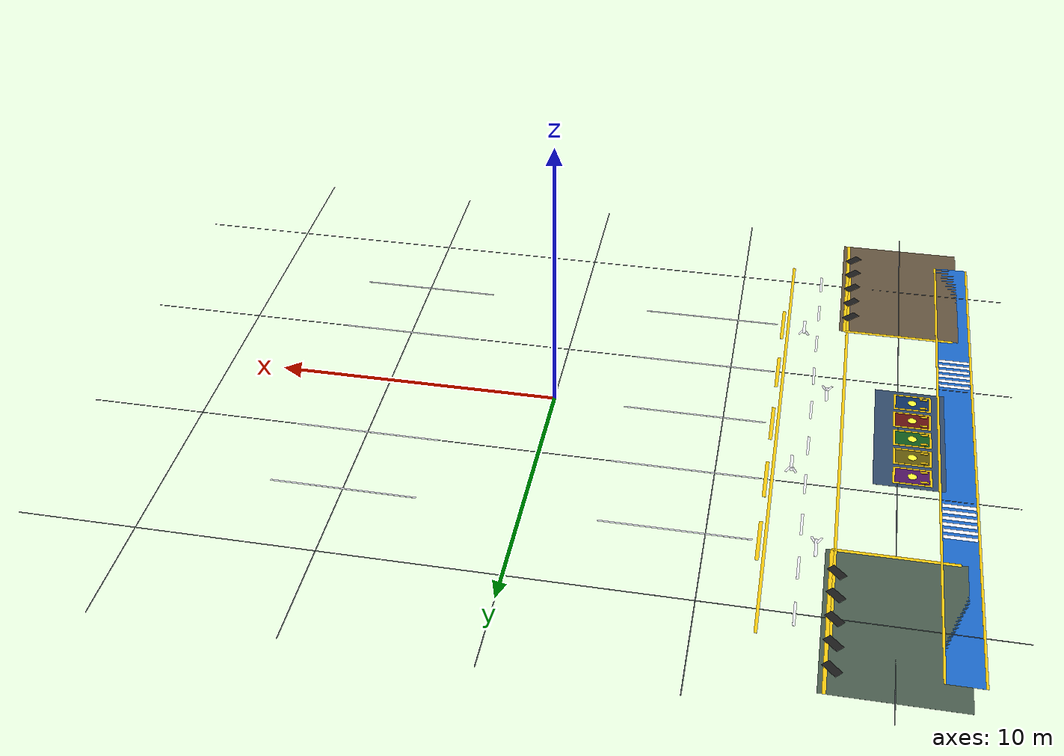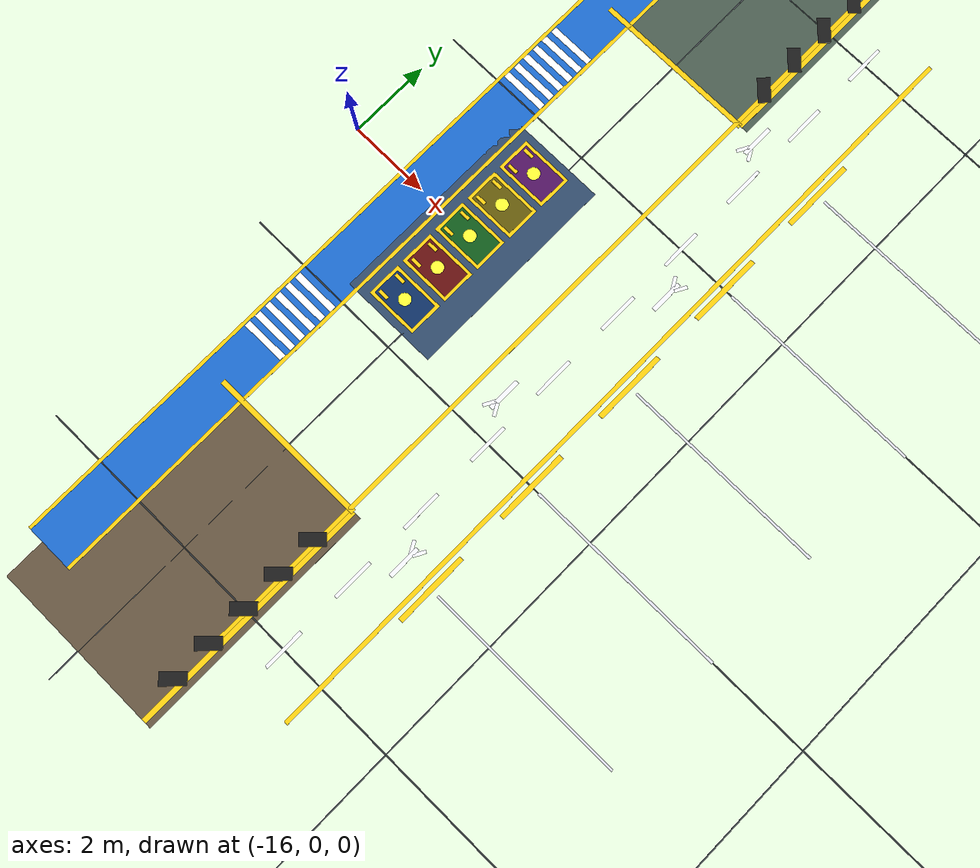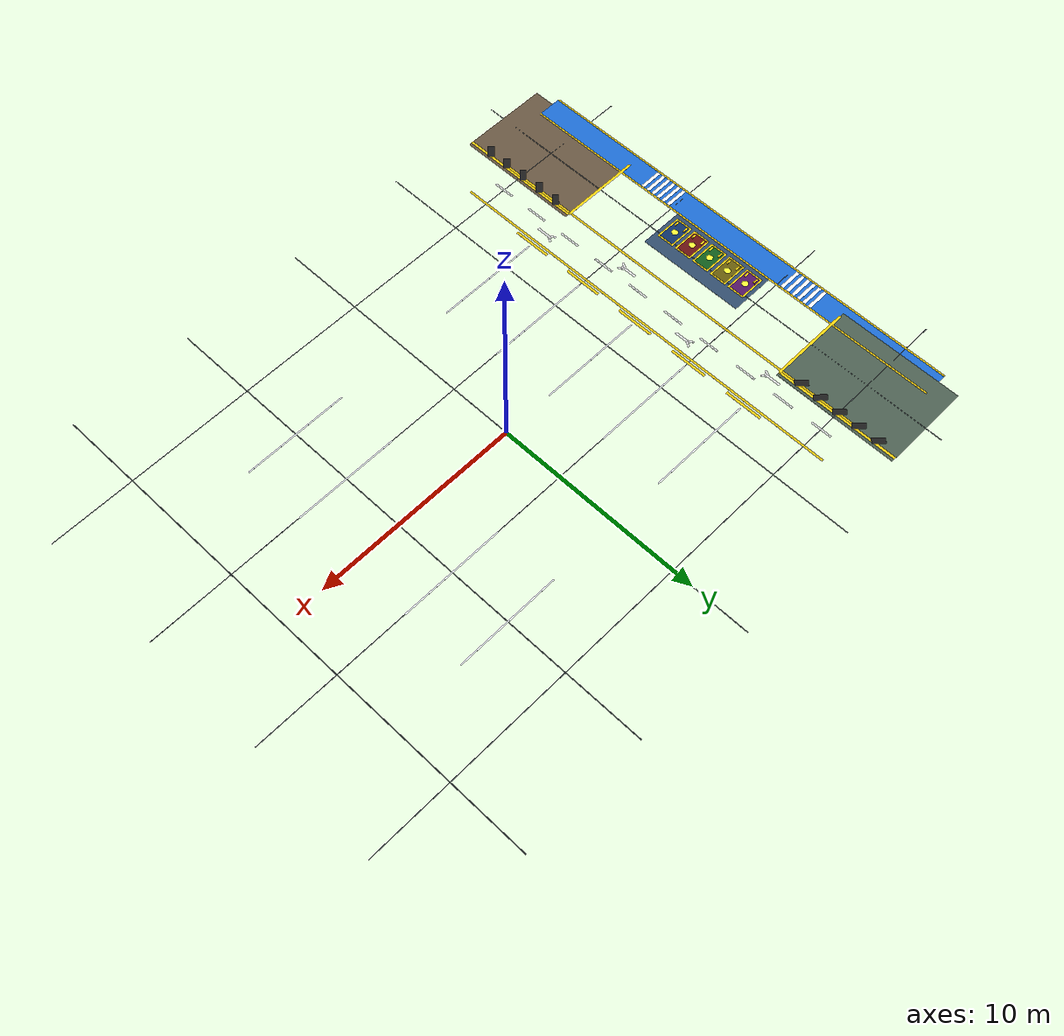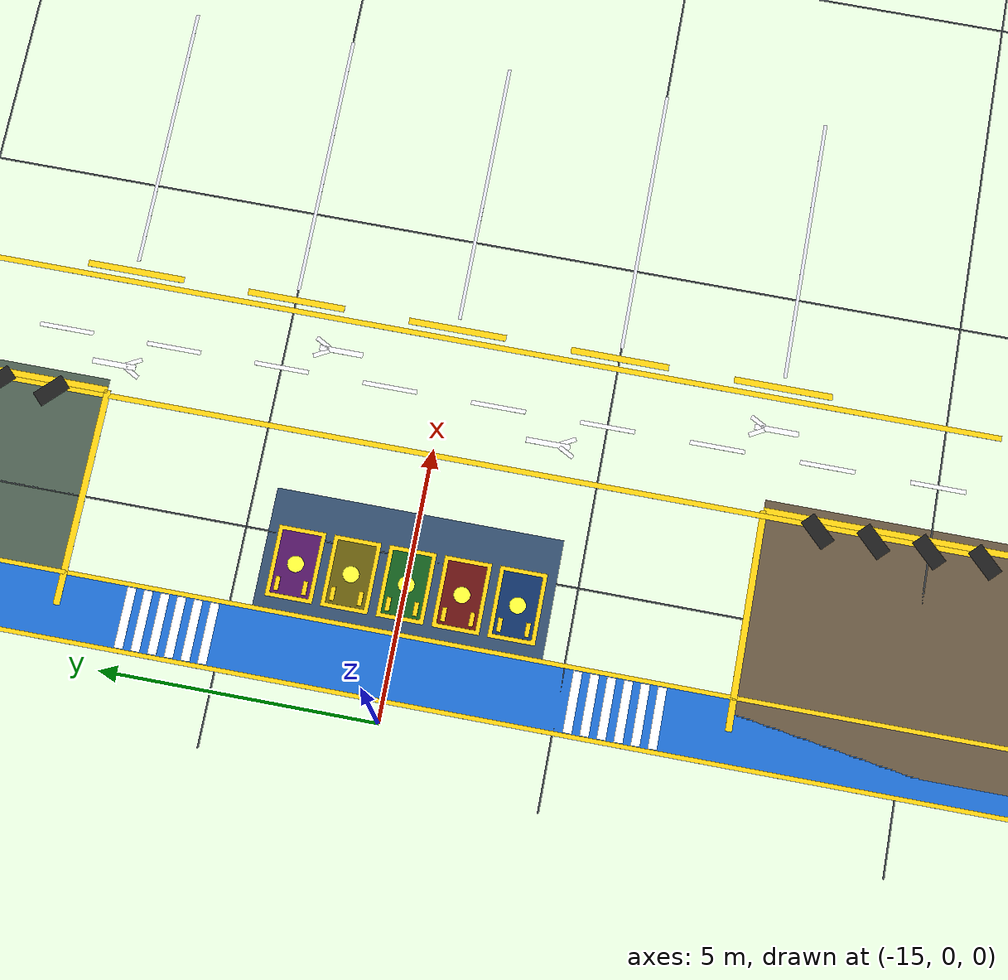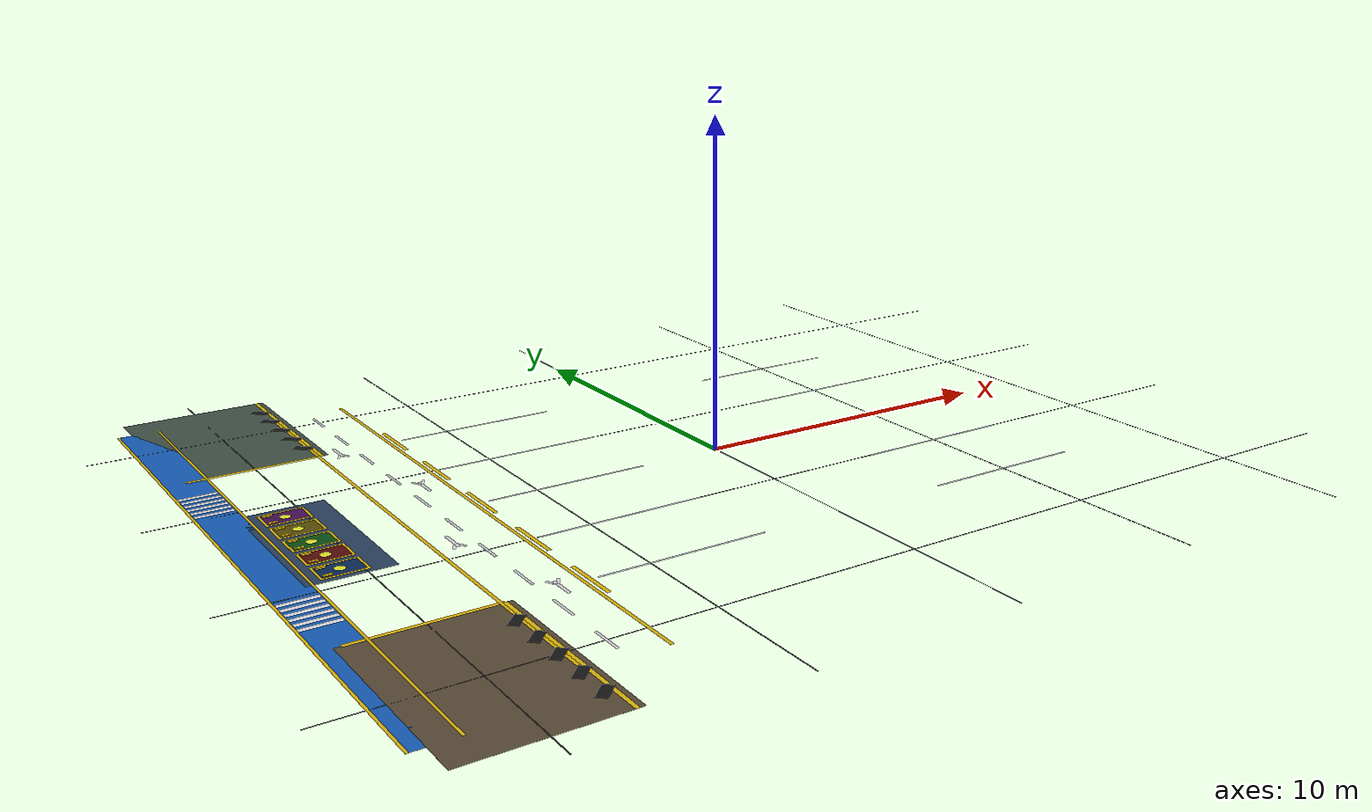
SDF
<sdf version="1.8">
 <world name="warehouse_3d">
  <model name="industrial_floor_markings">
   <static>true</static>
   <link name="joint_ns_-12.0">
    <pose>-12.0000 0.0000 0.0020 0.0000 0.0000 0.0000</pose>
    <visual name="joint_ns_-12.0_vis">
     <geometry><box><size>0.0300 25.6000 0.0020</size></box></geometry>
     <material>
      <ambient>0.143 0.156 0.169 1.00</ambient>
      <diffuse>0.220 0.240 0.260 1.00</diffuse>
      <specular>0.15 0.15 0.15 1.0</specular>
     </material>
    </visual>
   </link>
   <link name="joint_ns_-6.0">
    <pose>-6.0000 0.0000 0.0020 0.0000 0.0000 0.0000</pose>
    <visual name="joint_ns_-6.0_vis">
     <geometry><box><size>0.0300 25.6000 0.0020</size></box></geometry>
     <material>
      <ambient>0.143 0.156 0.169 1.00</ambient>
      <diffuse>0.220 0.240 0.260 1.00</diffuse>
      <specular>0.15 0.15 0.15 1.0</specular>
     </material>
    </visual>
   </link>
   <link name="joint_ns_0.0">
    <pose>0.0000 0.0000 0.0020 0.0000 0.0000 0.0000</pose>
    <visual name="joint_ns_0.0_vis">
     <geometry><box><size>0.0300 25.6000 0.0020</size></box></geometry>
     <material>
      <ambient>0.143 0.156 0.169 1.00</ambient>
      <diffuse>0.220 0.240 0.260 1.00</diffuse>
      <specular>0.15 0.15 0.15 1.0</specular>
     </material>
    </visual>
   </link>
   <link name="joint_ns_6.0">
    <pose>6.0000 0.0000 0.0020 0.0000 0.0000 0.0000</pose>
    <visual name="joint_ns_6.0_vis">
     <geometry><box><size>0.0300 25.6000 0.0020</size></box></geometry>
     <material>
      <ambient>0.143 0.156 0.169 1.00</ambient>
      <diffuse>0.220 0.240 0.260 1.00</diffuse>
      <specular>0.15 0.15 0.15 1.0</specular>
     </material>
    </visual>
   </link>
   <link name="joint_ns_12.0">
    <pose>12.0000 0.0000 0.0020 0.0000 0.0000 0.0000</pose>
    <visual name="joint_ns_12.0_vis">
     <geometry><box><size>0.0300 25.6000 0.0020</size></box></geometry>
     <material>
      <ambient>0.143 0.156 0.169 1.00</ambient>
      <diffuse>0.220 0.240 0.260 1.00</diffuse>
      <specular>0.15 0.15 0.15 1.0</specular>
     </material>
    </visual>
   </link>
   <link name="joint_ew_-9.0">
    <pose>0.0000 -9.0000 0.0020 0.0000 0.0000 0.0000</pose>
    <visual name="joint_ew_-9.0_vis">
     <geometry><box><size>32.0000 0.0300 0.0020</size></box></geometry>
     <material>
      <ambient>0.143 0.156 0.169 1.00</ambient>
      <diffuse>0.220 0.240 0.260 1.00</diffuse>
      <specular>0.15 0.15 0.15 1.0</specular>
     </material>
    </visual>
   </link>
   <link name="joint_ew_-3.0">
    <pose>0.0000 -3.0000 0.0020 0.0000 0.0000 0.0000</pose>
    <visual name="joint_ew_-3.0_vis">
     <geometry><box><size>32.0000 0.0300 0.0020</size></box></geometry>
     <material>
      <ambient>0.143 0.156 0.169 1.00</ambient>
      <diffuse>0.220 0.240 0.260 1.00</diffuse>
      <specular>0.15 0.15 0.15 1.0</specular>
     </material>
    </visual>
   </link>
   <link name="joint_ew_3.0">
    <pose>0.0000 3.0000 0.0020 0.0000 0.0000 0.0000</pose>
    <visual name="joint_ew_3.0_vis">
     <geometry><box><size>32.0000 0.0300 0.0020</size></box></geometry>
     <material>
      <ambient>0.143 0.156 0.169 1.00</ambient>
      <diffuse>0.220 0.240 0.260 1.00</diffuse>
      <specular>0.15 0.15 0.15 1.0</specular>
     </material>
    </visual>
   </link>
   <link name="joint_ew_9.0">
    <pose>0.0000 9.0000 0.0020 0.0000 0.0000 0.0000</pose>
    <visual name="joint_ew_9.0_vis">
     <geometry><box><size>32.0000 0.0300 0.0020</size></box></geometry>
     <material>
      <ambient>0.143 0.156 0.169 1.00</ambient>
      <diffuse>0.220 0.240 0.260 1.00</diffuse>
      <specular>0.15 0.15 0.15 1.0</specular>
     </material>
    </visual>
   </link>
   <link name="arterial_border_w">
    <pose>-10.1000 0.0000 0.0030 0.0000 0.0000 0.0000</pose>
    <visual name="arterial_border_w_vis">
     <geometry><box><size>0.1000 20.0000 0.0020</size></box></geometry>
     <material>
      <ambient>0.617 0.507 0.033 1.00</ambient>
      <diffuse>0.950 0.780 0.050 1.00</diffuse>
      <specular>0.15 0.15 0.15 1.0</specular>
     </material>
    </visual>
   </link>
   <link name="arterial_border_e">
    <pose>-7.9000 0.0000 0.0030 0.0000 0.0000 0.0000</pose>
    <visual name="arterial_border_e_vis">
     <geometry><box><size>0.1000 20.0000 0.0020</size></box></geometry>
     <material>
      <ambient>0.617 0.507 0.033 1.00</ambient>
      <diffuse>0.950 0.780 0.050 1.00</diffuse>
      <specular>0.15 0.15 0.15 1.0</specular>
     </material>
    </visual>
   </link>
   <link name="arterial_dash_0">
    <pose>-9.0000 -9.0000 0.0030 0.0000 0.0000 0.0000</pose>
    <visual name="arterial_dash_0_vis">
     <geometry><box><size>0.0800 1.0000 0.0020</size></box></geometry>
     <material>
      <ambient>0.598 0.598 0.617 1.00</ambient>
      <diffuse>0.920 0.920 0.950 1.00</diffuse>
      <specular>0.15 0.15 0.15 1.0</specular>
     </material>
    </visual>
   </link>
   <link name="arterial_dash_1">
    <pose>-9.0000 -7.0000 0.0030 0.0000 0.0000 0.0000</pose>
    <visual name="arterial_dash_1_vis">
     <geometry><box><size>0.0800 1.0000 0.0020</size></box></geometry>
     <material>
      <ambient>0.598 0.598 0.617 1.00</ambient>
      <diffuse>0.920 0.920 0.950 1.00</diffuse>
      <specular>0.15 0.15 0.15 1.0</specular>
     </material>
    </visual>
   </link>
   <link name="arterial_dash_2">
    <pose>-9.0000 -5.0000 0.0030 0.0000 0.0000 0.0000</pose>
    <visual name="arterial_dash_2_vis">
     <geometry><box><size>0.0800 1.0000 0.0020</size></box></geometry>
     <material>
      <ambient>0.598 0.598 0.617 1.00</ambient>
      <diffuse>0.920 0.920 0.950 1.00</diffuse>
      <specular>0.15 0.15 0.15 1.0</specular>
     </material>
    </visual>
   </link>
   <link name="arterial_dash_3">
    <pose>-9.0000 -3.0000 0.0030 0.0000 0.0000 0.0000</pose>
    <visual name="arterial_dash_3_vis">
     <geometry><box><size>0.0800 1.0000 0.0020</size></box></geometry>
     <material>
      <ambient>0.598 0.598 0.617 1.00</ambient>
      <diffuse>0.920 0.920 0.950 1.00</diffuse>
      <specular>0.15 0.15 0.15 1.0</specular>
     </material>
    </visual>
   </link>
   <link name="arterial_dash_4">
    <pose>-9.0000 -1.0000 0.0030 0.0000 0.0000 0.0000</pose>
    <visual name="arterial_dash_4_vis">
     <geometry><box><size>0.0800 1.0000 0.0020</size></box></geometry>
     <material>
      <ambient>0.598 0.598 0.617 1.00</ambient>
      <diffuse>0.920 0.920 0.950 1.00</diffuse>
      <specular>0.15 0.15 0.15 1.0</specular>
     </material>
    </visual>
   </link>
   <link name="arterial_dash_5">
    <pose>-9.0000 1.0000 0.0030 0.0000 0.0000 0.0000</pose>
    <visual name="arterial_dash_5_vis">
     <geometry><box><size>0.0800 1.0000 0.0020</size></box></geometry>
     <material>
      <ambient>0.598 0.598 0.617 1.00</ambient>
      <diffuse>0.920 0.920 0.950 1.00</diffuse>
      <specular>0.15 0.15 0.15 1.0</specular>
     </material>
    </visual>
   </link>
   <link name="arterial_dash_6">
    <pose>-9.0000 3.0000 0.0030 0.0000 0.0000 0.0000</pose>
    <visual name="arterial_dash_6_vis">
     <geometry><box><size>0.0800 1.0000 0.0020</size></box></geometry>
     <material>
      <ambient>0.598 0.598 0.617 1.00</ambient>
      <diffuse>0.920 0.920 0.950 1.00</diffuse>
      <specular>0.15 0.15 0.15 1.0</specular>
     </material>
    </visual>
   </link>
   <link name="arterial_dash_7">
    <pose>-9.0000 5.0000 0.0030 0.0000 0.0000 0.0000</pose>
    <visual name="arterial_dash_7_vis">
     <geometry><box><size>0.0800 1.0000 0.0020</size></box></geometry>
     <material>
      <ambient>0.598 0.598 0.617 1.00</ambient>
      <diffuse>0.920 0.920 0.950 1.00</diffuse>
      <specular>0.15 0.15 0.15 1.0</specular>
     </material>
    </visual>
   </link>
   <link name="arterial_dash_8">
    <pose>-9.0000 7.0000 0.0030 0.0000 0.0000 0.0000</pose>
    <visual name="arterial_dash_8_vis">
     <geometry><box><size>0.0800 1.0000 0.0020</size></box></geometry>
     <material>
      <ambient>0.598 0.598 0.617 1.00</ambient>
      <diffuse>0.920 0.920 0.950 1.00</diffuse>
      <specular>0.15 0.15 0.15 1.0</specular>
     </material>
    </visual>
   </link>
   <link name="arterial_dash_9">
    <pose>-9.0000 9.0000 0.0030 0.0000 0.0000 0.0000</pose>
    <visual name="arterial_dash_9_vis">
     <geometry><box><size>0.0800 1.0000 0.0020</size></box></geometry>
     <material>
      <ambient>0.598 0.598 0.617 1.00</ambient>
      <diffuse>0.920 0.920 0.950 1.00</diffuse>
      <specular>0.15 0.15 0.15 1.0</specular>
     </material>
    </visual>
   </link>
   <link name="arrow_nb_stem_-6.0">
    <pose>-8.5000 -6.0000 0.0030 0.0000 0.0000 0.0000</pose>
    <visual name="arrow_nb_stem_-6.0_vis">
     <geometry><box><size>0.1000 0.8000 0.0020</size></box></geometry>
     <material>
      <ambient>0.598 0.598 0.617 1.00</ambient>
      <diffuse>0.920 0.920 0.950 1.00</diffuse>
      <specular>0.15 0.15 0.15 1.0</specular>
     </material>
    </visual>
   </link>
   <link name="arrow_nb_head1_-6.0">
    <pose>-8.6000 -5.6500 0.0030 0.0000 0.0000 0.5000</pose>
    <visual name="arrow_nb_head1_-6.0_vis">
     <geometry><box><size>0.0800 0.3000 0.0020</size></box></geometry>
     <material>
      <ambient>0.598 0.598 0.617 1.00</ambient>
      <diffuse>0.920 0.920 0.950 1.00</diffuse>
      <specular>0.15 0.15 0.15 1.0</specular>
     </material>
    </visual>
   </link>
   <link name="arrow_nb_head2_-6.0">
    <pose>-8.4000 -5.6500 0.0030 0.0000 0.0000 -0.5000</pose>
    <visual name="arrow_nb_head2_-6.0_vis">
     <geometry><box><size>0.0800 0.3000 0.0020</size></box></geometry>
     <material>
      <ambient>0.598 0.598 0.617 1.00</ambient>
      <diffuse>0.920 0.920 0.950 1.00</diffuse>
      <specular>0.15 0.15 0.15 1.0</specular>
     </material>
    </visual>
   </link>
   <link name="arrow_nb_stem_2.0">
    <pose>-8.5000 2.0000 0.0030 0.0000 0.0000 0.0000</pose>
    <visual name="arrow_nb_stem_2.0_vis">
     <geometry><box><size>0.1000 0.8000 0.0020</size></box></geometry>
     <material>
      <ambient>0.598 0.598 0.617 1.00</ambient>
      <diffuse>0.920 0.920 0.950 1.00</diffuse>
      <specular>0.15 0.15 0.15 1.0</specular>
     </material>
    </visual>
   </link>
   <link name="arrow_nb_head1_2.0">
    <pose>-8.6000 2.3500 0.0030 0.0000 0.0000 0.5000</pose>
    <visual name="arrow_nb_head1_2.0_vis">
     <geometry><box><size>0.0800 0.3000 0.0020</size></box></geometry>
     <material>
      <ambient>0.598 0.598 0.617 1.00</ambient>
      <diffuse>0.920 0.920 0.950 1.00</diffuse>
      <specular>0.15 0.15 0.15 1.0</specular>
     </material>
    </visual>
   </link>
   <link name="arrow_nb_head2_2.0">
    <pose>-8.4000 2.3500 0.0030 0.0000 0.0000 -0.5000</pose>
    <visual name="arrow_nb_head2_2.0_vis">
     <geometry><box><size>0.0800 0.3000 0.0020</size></box></geometry>
     <material>
      <ambient>0.598 0.598 0.617 1.00</ambient>
      <diffuse>0.920 0.920 0.950 1.00</diffuse>
      <specular>0.15 0.15 0.15 1.0</specular>
     </material>
    </visual>
   </link>
   <link name="arrow_sb_stem_-2.0">
    <pose>-9.5000 -2.0000 0.0030 0.0000 0.0000 0.0000</pose>
    <visual name="arrow_sb_stem_-2.0_vis">
     <geometry><box><size>0.1000 0.8000 0.0020</size></box></geometry>
     <material>
      <ambient>0.598 0.598 0.617 1.00</ambient>
      <diffuse>0.920 0.920 0.950 1.00</diffuse>
      <specular>0.15 0.15 0.15 1.0</specular>
     </material>
    </visual>
   </link>
   <link name="arrow_sb_head1_-2.0">
    <pose>-9.6000 -2.3500 0.0030 0.0000 0.0000 -0.5000</pose>
    <visual name="arrow_sb_head1_-2.0_vis">
     <geometry><box><size>0.0800 0.3000 0.0020</size></box></geometry>
     <material>
      <ambient>0.598 0.598 0.617 1.00</ambient>
      <diffuse>0.920 0.920 0.950 1.00</diffuse>
      <specular>0.15 0.15 0.15 1.0</specular>
     </material>
    </visual>
   </link>
   <link name="arrow_sb_head2_-2.0">
    <pose>-9.4000 -2.3500 0.0030 0.0000 0.0000 0.5000</pose>
    <visual name="arrow_sb_head2_-2.0_vis">
     <geometry><box><size>0.0800 0.3000 0.0020</size></box></geometry>
     <material>
      <ambient>0.598 0.598 0.617 1.00</ambient>
      <diffuse>0.920 0.920 0.950 1.00</diffuse>
      <specular>0.15 0.15 0.15 1.0</specular>
     </material>
    </visual>
   </link>
   <link name="arrow_sb_stem_6.0">
    <pose>-9.5000 6.0000 0.0030 0.0000 0.0000 0.0000</pose>
    <visual name="arrow_sb_stem_6.0_vis">
     <geometry><box><size>0.1000 0.8000 0.0020</size></box></geometry>
     <material>
      <ambient>0.598 0.598 0.617 1.00</ambient>
      <diffuse>0.920 0.920 0.950 1.00</diffuse>
      <specular>0.15 0.15 0.15 1.0</specular>
     </material>
    </visual>
   </link>
   <link name="arrow_sb_head1_6.0">
    <pose>-9.6000 5.6500 0.0030 0.0000 0.0000 -0.5000</pose>
    <visual name="arrow_sb_head1_6.0_vis">
     <geometry><box><size>0.0800 0.3000 0.0020</size></box></geometry>
     <material>
      <ambient>0.598 0.598 0.617 1.00</ambient>
      <diffuse>0.920 0.920 0.950 1.00</diffuse>
      <specular>0.15 0.15 0.15 1.0</specular>
     </material>
    </visual>
   </link>
   <link name="arrow_sb_head2_6.0">
    <pose>-9.4000 5.6500 0.0030 0.0000 0.0000 0.5000</pose>
    <visual name="arrow_sb_head2_6.0_vis">
     <geometry><box><size>0.0800 0.3000 0.0020</size></box></geometry>
     <material>
      <ambient>0.598 0.598 0.617 1.00</ambient>
      <diffuse>0.920 0.920 0.950 1.00</diffuse>
      <specular>0.15 0.15 0.15 1.0</specular>
     </material>
    </visual>
   </link>
   <link name="aisle_entry_bar_0">
    <pose>-7.7000 -6.0000 0.0030 0.0000 0.0000 0.0000</pose>
    <visual name="aisle_entry_bar_0_vis">
     <geometry><box><size>0.1200 1.8000 0.0020</size></box></geometry>
     <material>
      <ambient>0.617 0.507 0.033 1.00</ambient>
      <diffuse>0.950 0.780 0.050 1.00</diffuse>
      <specular>0.15 0.15 0.15 1.0</specular>
     </material>
    </visual>
   </link>
   <link name="aisle_center_w_0">
    <pose>-5.0000 -6.0000 0.0030 0.0000 0.0000 0.0000</pose>
    <visual name="aisle_center_w_0_vis">
     <geometry><box><size>5.0000 0.0600 0.0020</size></box></geometry>
     <material>
      <ambient>0.552 0.552 0.585 1.00</ambient>
      <diffuse>0.850 0.850 0.900 1.00</diffuse>
      <specular>0.15 0.15 0.15 1.0</specular>
     </material>
    </visual>
   </link>
   <link name="aisle_center_e_0">
    <pose>6.0000 -6.0000 0.0030 0.0000 0.0000 0.0000</pose>
    <visual name="aisle_center_e_0_vis">
     <geometry><box><size>5.0000 0.0600 0.0020</size></box></geometry>
     <material>
      <ambient>0.552 0.552 0.585 1.00</ambient>
      <diffuse>0.850 0.850 0.900 1.00</diffuse>
      <specular>0.15 0.15 0.15 1.0</specular>
     </material>
    </visual>
   </link>
   <link name="aisle_entry_bar_1">
    <pose>-7.7000 -3.0000 0.0030 0.0000 0.0000 0.0000</pose>
    <visual name="aisle_entry_bar_1_vis">
     <geometry><box><size>0.1200 1.8000 0.0020</size></box></geometry>
     <material>
      <ambient>0.617 0.507 0.033 1.00</ambient>
      <diffuse>0.950 0.780 0.050 1.00</diffuse>
      <specular>0.15 0.15 0.15 1.0</specular>
     </material>
    </visual>
   </link>
   <link name="aisle_center_w_1">
    <pose>-5.0000 -3.0000 0.0030 0.0000 0.0000 0.0000</pose>
    <visual name="aisle_center_w_1_vis">
     <geometry><box><size>5.0000 0.0600 0.0020</size></box></geometry>
     <material>
      <ambient>0.552 0.552 0.585 1.00</ambient>
      <diffuse>0.850 0.850 0.900 1.00</diffuse>
      <specular>0.15 0.15 0.15 1.0</specular>
     </material>
    </visual>
   </link>
   <link name="aisle_center_e_1">
    <pose>6.0000 -3.0000 0.0030 0.0000 0.0000 0.0000</pose>
    <visual name="aisle_center_e_1_vis">
     <geometry><box><size>5.0000 0.0600 0.0020</size></box></geometry>
     <material>
      <ambient>0.552 0.552 0.585 1.00</ambient>
      <diffuse>0.850 0.850 0.900 1.00</diffuse>
      <specular>0.15 0.15 0.15 1.0</specular>
     </material>
    </visual>
   </link>
   <link name="aisle_entry_bar_2">
    <pose>-7.7000 0.0000 0.0030 0.0000 0.0000 0.0000</pose>
    <visual name="aisle_entry_bar_2_vis">
     <geometry><box><size>0.1200 1.8000 0.0020</size></box></geometry>
     <material>
      <ambient>0.617 0.507 0.033 1.00</ambient>
      <diffuse>0.950 0.780 0.050 1.00</diffuse>
      <specular>0.15 0.15 0.15 1.0</specular>
     </material>
    </visual>
   </link>
   <link name="aisle_center_w_2">
    <pose>-5.0000 0.0000 0.0030 0.0000 0.0000 0.0000</pose>
    <visual name="aisle_center_w_2_vis">
     <geometry><box><size>5.0000 0.0600 0.0020</size></box></geometry>
     <material>
      <ambient>0.552 0.552 0.585 1.00</ambient>
      <diffuse>0.850 0.850 0.900 1.00</diffuse>
      <specular>0.15 0.15 0.15 1.0</specular>
     </material>
    </visual>
   </link>
   <link name="aisle_center_e_2">
    <pose>6.0000 0.0000 0.0030 0.0000 0.0000 0.0000</pose>
    <visual name="aisle_center_e_2_vis">
     <geometry><box><size>5.0000 0.0600 0.0020</size></box></geometry>
     <material>
      <ambient>0.552 0.552 0.585 1.00</ambient>
      <diffuse>0.850 0.850 0.900 1.00</diffuse>
      <specular>0.15 0.15 0.15 1.0</specular>
     </material>
    </visual>
   </link>
   <link name="aisle_entry_bar_3">
    <pose>-7.7000 3.0000 0.0030 0.0000 0.0000 0.0000</pose>
    <visual name="aisle_entry_bar_3_vis">
     <geometry><box><size>0.1200 1.8000 0.0020</size></box></geometry>
     <material>
      <ambient>0.617 0.507 0.033 1.00</ambient>
      <diffuse>0.950 0.780 0.050 1.00</diffuse>
      <specular>0.15 0.15 0.15 1.0</specular>
     </material>
    </visual>
   </link>
   <link name="aisle_center_w_3">
    <pose>-5.0000 3.0000 0.0030 0.0000 0.0000 0.0000</pose>
    <visual name="aisle_center_w_3_vis">
     <geometry><box><size>5.0000 0.0600 0.0020</size></box></geometry>
     <material>
      <ambient>0.552 0.552 0.585 1.00</ambient>
      <diffuse>0.850 0.850 0.900 1.00</diffuse>
      <specular>0.15 0.15 0.15 1.0</specular>
     </material>
    </visual>
   </link>
   <link name="aisle_center_e_3">
    <pose>6.0000 3.0000 0.0030 0.0000 0.0000 0.0000</pose>
    <visual name="aisle_center_e_3_vis">
     <geometry><box><size>5.0000 0.0600 0.0020</size></box></geometry>
     <material>
      <ambient>0.552 0.552 0.585 1.00</ambient>
      <diffuse>0.850 0.850 0.900 1.00</diffuse>
      <specular>0.15 0.15 0.15 1.0</specular>
     </material>
    </visual>
   </link>
   <link name="aisle_entry_bar_4">
    <pose>-7.7000 6.0000 0.0030 0.0000 0.0000 0.0000</pose>
    <visual name="aisle_entry_bar_4_vis">
     <geometry><box><size>0.1200 1.8000 0.0020</size></box></geometry>
     <material>
      <ambient>0.617 0.507 0.033 1.00</ambient>
      <diffuse>0.950 0.780 0.050 1.00</diffuse>
      <specular>0.15 0.15 0.15 1.0</specular>
     </material>
    </visual>
   </link>
   <link name="aisle_center_w_4">
    <pose>-5.0000 6.0000 0.0030 0.0000 0.0000 0.0000</pose>
    <visual name="aisle_center_w_4_vis">
     <geometry><box><size>5.0000 0.0600 0.0020</size></box></geometry>
     <material>
      <ambient>0.552 0.552 0.585 1.00</ambient>
      <diffuse>0.850 0.850 0.900 1.00</diffuse>
      <specular>0.15 0.15 0.15 1.0</specular>
     </material>
    </visual>
   </link>
   <link name="aisle_center_e_4">
    <pose>6.0000 6.0000 0.0030 0.0000 0.0000 0.0000</pose>
    <visual name="aisle_center_e_4_vis">
     <geometry><box><size>5.0000 0.0600 0.0020</size></box></geometry>
     <material>
      <ambient>0.552 0.552 0.585 1.00</ambient>
      <diffuse>0.850 0.850 0.900 1.00</diffuse>
      <specular>0.15 0.15 0.15 1.0</specular>
     </material>
    </visual>
   </link>
   <link name="walkway_blue_base">
    <pose>-14.0000 0.0000 0.0020 0.0000 0.0000 0.0000</pose>
    <visual name="walkway_blue_base_vis">
     <geometry><box><size>1.2000 22.0000 0.0020</size></box></geometry>
     <material>
      <ambient>0.065 0.260 0.507 1.00</ambient>
      <diffuse>0.100 0.400 0.780 1.00</diffuse>
      <specular>0.15 0.15 0.15 1.0</specular>
     </material>
    </visual>
   </link>
   <link name="walkway_edge_w">
    <pose>-14.6000 0.0000 0.0030 0.0000 0.0000 0.0000</pose>
    <visual name="walkway_edge_w_vis">
     <geometry><box><size>0.0800 22.0000 0.0020</size></box></geometry>
     <material>
      <ambient>0.617 0.507 0.033 1.00</ambient>
      <diffuse>0.950 0.780 0.050 1.00</diffuse>
      <specular>0.15 0.15 0.15 1.0</specular>
     </material>
    </visual>
   </link>
   <link name="walkway_edge_e">
    <pose>-13.4000 0.0000 0.0030 0.0000 0.0000 0.0000</pose>
    <visual name="walkway_edge_e_vis">
     <geometry><box><size>0.0800 22.0000 0.0020</size></box></geometry>
     <material>
      <ambient>0.617 0.507 0.033 1.00</ambient>
      <diffuse>0.950 0.780 0.050 1.00</diffuse>
      <specular>0.15 0.15 0.15 1.0</specular>
     </material>
    </visual>
   </link>
   <link name="zebra_0_0">
    <pose>-14.0000 3.2500 0.0040 0.0000 0.0000 0.0000</pose>
    <visual name="zebra_0_0_vis">
     <geometry><box><size>1.1000 0.1600 0.0020</size></box></geometry>
     <material>
      <ambient>0.617 0.617 0.637 1.00</ambient>
      <diffuse>0.950 0.950 0.980 1.00</diffuse>
      <specular>0.15 0.15 0.15 1.0</specular>
     </material>
    </visual>
   </link>
   <link name="zebra_0_1">
    <pose>-14.0000 3.5500 0.0040 0.0000 0.0000 0.0000</pose>
    <visual name="zebra_0_1_vis">
     <geometry><box><size>1.1000 0.1600 0.0020</size></box></geometry>
     <material>
      <ambient>0.617 0.617 0.637 1.00</ambient>
      <diffuse>0.950 0.950 0.980 1.00</diffuse>
      <specular>0.15 0.15 0.15 1.0</specular>
     </material>
    </visual>
   </link>
   <link name="zebra_0_2">
    <pose>-14.0000 3.8500 0.0040 0.0000 0.0000 0.0000</pose>
    <visual name="zebra_0_2_vis">
     <geometry><box><size>1.1000 0.1600 0.0020</size></box></geometry>
     <material>
      <ambient>0.617 0.617 0.637 1.00</ambient>
      <diffuse>0.950 0.950 0.980 1.00</diffuse>
      <specular>0.15 0.15 0.15 1.0</specular>
     </material>
    </visual>
   </link>
   <link name="zebra_0_3">
    <pose>-14.0000 4.1500 0.0040 0.0000 0.0000 0.0000</pose>
    <visual name="zebra_0_3_vis">
     <geometry><box><size>1.1000 0.1600 0.0020</size></box></geometry>
     <material>
      <ambient>0.617 0.617 0.637 1.00</ambient>
      <diffuse>0.950 0.950 0.980 1.00</diffuse>
      <specular>0.15 0.15 0.15 1.0</specular>
     </material>
    </visual>
   </link>
   <link name="zebra_0_4">
    <pose>-14.0000 4.4500 0.0040 0.0000 0.0000 0.0000</pose>
    <visual name="zebra_0_4_vis">
     <geometry><box><size>1.1000 0.1600 0.0020</size></box></geometry>
     <material>
      <ambient>0.617 0.617 0.637 1.00</ambient>
      <diffuse>0.950 0.950 0.980 1.00</diffuse>
      <specular>0.15 0.15 0.15 1.0</specular>
     </material>
    </visual>
   </link>
   <link name="zebra_0_5">
    <pose>-14.0000 4.7500 0.0040 0.0000 0.0000 0.0000</pose>
    <visual name="zebra_0_5_vis">
     <geometry><box><size>1.1000 0.1600 0.0020</size></box></geometry>
     <material>
      <ambient>0.617 0.617 0.637 1.00</ambient>
      <diffuse>0.950 0.950 0.980 1.00</diffuse>
      <specular>0.15 0.15 0.15 1.0</specular>
     </material>
    </visual>
   </link>
   <link name="zebra_1_0">
    <pose>-14.0000 -4.7500 0.0040 0.0000 0.0000 0.0000</pose>
    <visual name="zebra_1_0_vis">
     <geometry><box><size>1.1000 0.1600 0.0020</size></box></geometry>
     <material>
      <ambient>0.617 0.617 0.637 1.00</ambient>
      <diffuse>0.950 0.950 0.980 1.00</diffuse>
      <specular>0.15 0.15 0.15 1.0</specular>
     </material>
    </visual>
   </link>
   <link name="zebra_1_1">
    <pose>-14.0000 -4.4500 0.0040 0.0000 0.0000 0.0000</pose>
    <visual name="zebra_1_1_vis">
     <geometry><box><size>1.1000 0.1600 0.0020</size></box></geometry>
     <material>
      <ambient>0.617 0.617 0.637 1.00</ambient>
      <diffuse>0.950 0.950 0.980 1.00</diffuse>
      <specular>0.15 0.15 0.15 1.0</specular>
     </material>
    </visual>
   </link>
   <link name="zebra_1_2">
    <pose>-14.0000 -4.1500 0.0040 0.0000 0.0000 0.0000</pose>
    <visual name="zebra_1_2_vis">
     <geometry><box><size>1.1000 0.1600 0.0020</size></box></geometry>
     <material>
      <ambient>0.617 0.617 0.637 1.00</ambient>
      <diffuse>0.950 0.950 0.980 1.00</diffuse>
      <specular>0.15 0.15 0.15 1.0</specular>
     </material>
    </visual>
   </link>
   <link name="zebra_1_3">
    <pose>-14.0000 -3.8500 0.0040 0.0000 0.0000 0.0000</pose>
    <visual name="zebra_1_3_vis">
     <geometry><box><size>1.1000 0.1600 0.0020</size></box></geometry>
     <material>
      <ambient>0.617 0.617 0.637 1.00</ambient>
      <diffuse>0.950 0.950 0.980 1.00</diffuse>
      <specular>0.15 0.15 0.15 1.0</specular>
     </material>
    </visual>
   </link>
   <link name="zebra_1_4">
    <pose>-14.0000 -3.5500 0.0040 0.0000 0.0000 0.0000</pose>
    <visual name="zebra_1_4_vis">
     <geometry><box><size>1.1000 0.1600 0.0020</size></box></geometry>
     <material>
      <ambient>0.617 0.617 0.637 1.00</ambient>
      <diffuse>0.950 0.950 0.980 1.00</diffuse>
      <specular>0.15 0.15 0.15 1.0</specular>
     </material>
    </visual>
   </link>
   <link name="zebra_1_5">
    <pose>-14.0000 -3.2500 0.0040 0.0000 0.0000 0.0000</pose>
    <visual name="zebra_1_5_vis">
     <geometry><box><size>1.1000 0.1600 0.0020</size></box></geometry>
     <material>
      <ambient>0.617 0.617 0.637 1.00</ambient>
      <diffuse>0.950 0.950 0.980 1.00</diffuse>
      <specular>0.15 0.15 0.15 1.0</specular>
     </material>
    </visual>
   </link>
   <link name="dock_apron_pad">
    <pose>-12.0000 9.0000 0.0020 0.0000 0.0000 0.0000</pose>
    <visual name="dock_apron_pad_vis">
     <geometry><box><size>4.4000 6.0000 0.0020</size></box></geometry>
     <material>
      <ambient>0.182 0.227 0.195 1.00</ambient>
      <diffuse>0.280 0.350 0.300 1.00</diffuse>
      <specular>0.15 0.15 0.15 1.0</specular>
     </material>
    </visual>
   </link>
   <link name="dock_border_e">
    <pose>-10.0000 9.0000 0.0030 0.0000 0.0000 0.0000</pose>
    <visual name="dock_border_e_vis">
     <geometry><box><size>0.1200 6.0000 0.0020</size></box></geometry>
     <material>
      <ambient>0.617 0.507 0.033 1.00</ambient>
      <diffuse>0.950 0.780 0.050 1.00</diffuse>
      <specular>0.15 0.15 0.15 1.0</specular>
     </material>
    </visual>
   </link>
   <link name="dock_border_s">
    <pose>-12.0000 6.0000 0.0030 0.0000 0.0000 0.0000</pose>
    <visual name="dock_border_s_vis">
     <geometry><box><size>4.0000 0.1200 0.0020</size></box></geometry>
     <material>
      <ambient>0.617 0.507 0.033 1.00</ambient>
      <diffuse>0.950 0.780 0.050 1.00</diffuse>
      <specular>0.15 0.15 0.15 1.0</specular>
     </material>
    </visual>
   </link>
   <link name="dock_hazard_0">
    <pose>-10.2000 7.0000 0.0040 0.0000 0.0000 0.7850</pose>
    <visual name="dock_hazard_0_vis">
     <geometry><box><size>0.3000 0.6000 0.0020</size></box></geometry>
     <material>
      <ambient>0.065 0.065 0.065 1.00</ambient>
      <diffuse>0.100 0.100 0.100 1.00</diffuse>
      <specular>0.15 0.15 0.15 1.0</specular>
     </material>
    </visual>
   </link>
   <link name="dock_hazard_1">
    <pose>-10.2000 8.0000 0.0040 0.0000 0.0000 0.7850</pose>
    <visual name="dock_hazard_1_vis">
     <geometry><box><size>0.3000 0.6000 0.0020</size></box></geometry>
     <material>
      <ambient>0.065 0.065 0.065 1.00</ambient>
      <diffuse>0.100 0.100 0.100 1.00</diffuse>
      <specular>0.15 0.15 0.15 1.0</specular>
     </material>
    </visual>
   </link>
   <link name="dock_hazard_2">
    <pose>-10.2000 9.0000 0.0040 0.0000 0.0000 0.7850</pose>
    <visual name="dock_hazard_2_vis">
     <geometry><box><size>0.3000 0.6000 0.0020</size></box></geometry>
     <material>
      <ambient>0.065 0.065 0.065 1.00</ambient>
      <diffuse>0.100 0.100 0.100 1.00</diffuse>
      <specular>0.15 0.15 0.15 1.0</specular>
     </material>
    </visual>
   </link>
   <link name="dock_hazard_3">
    <pose>-10.2000 10.0000 0.0040 0.0000 0.0000 0.7850</pose>
    <visual name="dock_hazard_3_vis">
     <geometry><box><size>0.3000 0.6000 0.0020</size></box></geometry>
     <material>
      <ambient>0.065 0.065 0.065 1.00</ambient>
      <diffuse>0.100 0.100 0.100 1.00</diffuse>
      <specular>0.15 0.15 0.15 1.0</specular>
     </material>
    </visual>
   </link>
   <link name="dock_hazard_4">
    <pose>-10.2000 11.0000 0.0040 0.0000 0.0000 0.7850</pose>
    <visual name="dock_hazard_4_vis">
     <geometry><box><size>0.3000 0.6000 0.0020</size></box></geometry>
     <material>
      <ambient>0.065 0.065 0.065 1.00</ambient>
      <diffuse>0.100 0.100 0.100 1.00</diffuse>
      <specular>0.15 0.15 0.15 1.0</specular>
     </material>
    </visual>
   </link>
   <link name="packing_apron_pad">
    <pose>-12.0000 -9.0000 0.0020 0.0000 0.0000 0.0000</pose>
    <visual name="packing_apron_pad_vis">
     <geometry><box><size>4.4000 6.0000 0.0020</size></box></geometry>
     <material>
      <ambient>0.247 0.208 0.156 1.00</ambient>
      <diffuse>0.380 0.320 0.240 1.00</diffuse>
      <specular>0.15 0.15 0.15 1.0</specular>
     </material>
    </visual>
   </link>
   <link name="packing_border_e">
    <pose>-10.0000 -9.0000 0.0030 0.0000 0.0000 0.0000</pose>
    <visual name="packing_border_e_vis">
     <geometry><box><size>0.1200 6.0000 0.0020</size></box></geometry>
     <material>
      <ambient>0.617 0.507 0.033 1.00</ambient>
      <diffuse>0.950 0.780 0.050 1.00</diffuse>
      <specular>0.15 0.15 0.15 1.0</specular>
     </material>
    </visual>
   </link>
   <link name="packing_border_n">
    <pose>-12.0000 -6.0000 0.0030 0.0000 0.0000 0.0000</pose>
    <visual name="packing_border_n_vis">
     <geometry><box><size>4.0000 0.1200 0.0020</size></box></geometry>
     <material>
      <ambient>0.617 0.507 0.033 1.00</ambient>
      <diffuse>0.950 0.780 0.050 1.00</diffuse>
      <specular>0.15 0.15 0.15 1.0</specular>
     </material>
    </visual>
   </link>
   <link name="packing_hazard_0">
    <pose>-10.2000 -11.0000 0.0040 0.0000 0.0000 -0.7850</pose>
    <visual name="packing_hazard_0_vis">
     <geometry><box><size>0.3000 0.6000 0.0020</size></box></geometry>
     <material>
      <ambient>0.065 0.065 0.065 1.00</ambient>
      <diffuse>0.100 0.100 0.100 1.00</diffuse>
      <specular>0.15 0.15 0.15 1.0</specular>
     </material>
    </visual>
   </link>
   <link name="packing_hazard_1">
    <pose>-10.2000 -10.0000 0.0040 0.0000 0.0000 -0.7850</pose>
    <visual name="packing_hazard_1_vis">
     <geometry><box><size>0.3000 0.6000 0.0020</size></box></geometry>
     <material>
      <ambient>0.065 0.065 0.065 1.00</ambient>
      <diffuse>0.100 0.100 0.100 1.00</diffuse>
      <specular>0.15 0.15 0.15 1.0</specular>
     </material>
    </visual>
   </link>
   <link name="packing_hazard_2">
    <pose>-10.2000 -9.0000 0.0040 0.0000 0.0000 -0.7850</pose>
    <visual name="packing_hazard_2_vis">
     <geometry><box><size>0.3000 0.6000 0.0020</size></box></geometry>
     <material>
      <ambient>0.065 0.065 0.065 1.00</ambient>
      <diffuse>0.100 0.100 0.100 1.00</diffuse>
      <specular>0.15 0.15 0.15 1.0</specular>
     </material>
    </visual>
   </link>
   <link name="packing_hazard_3">
    <pose>-10.2000 -8.0000 0.0040 0.0000 0.0000 -0.7850</pose>
    <visual name="packing_hazard_3_vis">
     <geometry><box><size>0.3000 0.6000 0.0020</size></box></geometry>
     <material>
      <ambient>0.065 0.065 0.065 1.00</ambient>
      <diffuse>0.100 0.100 0.100 1.00</diffuse>
      <specular>0.15 0.15 0.15 1.0</specular>
     </material>
    </visual>
   </link>
   <link name="packing_hazard_4">
    <pose>-10.2000 -7.0000 0.0040 0.0000 0.0000 -0.7850</pose>
    <visual name="packing_hazard_4_vis">
     <geometry><box><size>0.3000 0.6000 0.0020</size></box></geometry>
     <material>
      <ambient>0.065 0.065 0.065 1.00</ambient>
      <diffuse>0.100 0.100 0.100 1.00</diffuse>
      <specular>0.15 0.15 0.15 1.0</specular>
     </material>
    </visual>
   </link>
   <link name="charging_depot_pad">
    <pose>-12.4000 0.0000 0.0020 0.0000 0.0000 0.0000</pose>
    <visual name="charging_depot_pad_vis">
     <geometry><box><size>2.4000 5.2000 0.0020</size></box></geometry>
     <material>
      <ambient>0.117 0.182 0.260 1.00</ambient>
      <diffuse>0.180 0.280 0.400 1.00</diffuse>
      <specular>0.15 0.15 0.15 1.0</specular>
     </material>
    </visual>
   </link>
   <link name="stall_box_01_Alpha">
    <pose>-12.5000 -2.0000 0.0030 0.0000 0.0000 0.0000</pose>
    <visual name="stall_box_01_Alpha_vis">
     <geometry><box><size>1.3000 0.8500 0.0020</size></box></geometry>
     <material>
      <ambient>0.617 0.507 0.033 1.00</ambient>
      <diffuse>0.950 0.780 0.050 1.00</diffuse>
      <specular>0.15 0.15 0.15 1.0</specular>
     </material>
    </visual>
   </link>
   <link name="stall_pad_01_Alpha">
    <pose>-12.5000 -2.0000 0.0040 0.0000 0.0000 0.0000</pose>
    <visual name="stall_pad_01_Alpha_vis">
     <geometry><box><size>1.1500 0.7000 0.0020</size></box></geometry>
     <material>
      <ambient>0.031 0.117 0.247 1.00</ambient>
      <diffuse>0.048 0.180 0.380 1.00</diffuse>
      <specular>0.15 0.15 0.15 1.0</specular>
     </material>
    </visual>
   </link>
   <link name="stall_bolt_01_Alpha">
    <pose>-12.5000 -2.0000 0.0050 0.0000 0.0000 0.0000</pose>
    <visual name="stall_bolt_01_Alpha_vis">
     <geometry><cylinder><radius>0.1500</radius><length>0.0020</length></cylinder></geometry>
     <material>
      <ambient>0.637 0.637 0.130 1.00</ambient>
      <diffuse>0.980 0.980 0.200 1.00</diffuse>
      <specular>0.2 0.2 0.2 1.0</specular>
     </material>
    </visual>
   </link>
   <link name="wheel_stop_l_01_Alpha">
    <pose>-12.9000 -2.2500 0.0150 0.0000 0.0000 0.0000</pose>
    <collision name="wheel_stop_l_01_Alpha_col">
     <geometry><box><size>0.2500 0.0800 0.0300</size></box></geometry>
    </collision>
    <visual name="wheel_stop_l_01_Alpha_vis">
     <geometry><box><size>0.2500 0.0800 0.0300</size></box></geometry>
     <material>
      <ambient>0.617 0.507 0.033 1.00</ambient>
      <diffuse>0.950 0.780 0.050 1.00</diffuse>
      <specular>0.15 0.15 0.15 1.0</specular>
     </material>
    </visual>
   </link>
   <link name="wheel_stop_r_01_Alpha">
    <pose>-12.9000 -1.7500 0.0150 0.0000 0.0000 0.0000</pose>
    <collision name="wheel_stop_r_01_Alpha_col">
     <geometry><box><size>0.2500 0.0800 0.0300</size></box></geometry>
    </collision>
    <visual name="wheel_stop_r_01_Alpha_vis">
     <geometry><box><size>0.2500 0.0800 0.0300</size></box></geometry>
     <material>
      <ambient>0.617 0.507 0.033 1.00</ambient>
      <diffuse>0.950 0.780 0.050 1.00</diffuse>
      <specular>0.15 0.15 0.15 1.0</specular>
     </material>
    </visual>
   </link>
   <link name="stall_box_02_Beta">
    <pose>-12.5000 -1.0000 0.0030 0.0000 0.0000 0.0000</pose>
    <visual name="stall_box_02_Beta_vis">
     <geometry><box><size>1.3000 0.8500 0.0020</size></box></geometry>
     <material>
      <ambient>0.617 0.507 0.033 1.00</ambient>
      <diffuse>0.950 0.780 0.050 1.00</diffuse>
      <specular>0.15 0.15 0.15 1.0</specular>
     </material>
    </visual>
   </link>
   <link name="stall_pad_02_Beta">
    <pose>-12.5000 -1.0000 0.0040 0.0000 0.0000 0.0000</pose>
    <visual name="stall_pad_02_Beta_vis">
     <geometry><box><size>1.1500 0.7000 0.0020</size></box></geometry>
     <material>
      <ambient>0.247 0.039 0.039 1.00</ambient>
      <diffuse>0.380 0.060 0.060 1.00</diffuse>
      <specular>0.15 0.15 0.15 1.0</specular>
     </material>
    </visual>
   </link>
   <link name="stall_bolt_02_Beta">
    <pose>-12.5000 -1.0000 0.0050 0.0000 0.0000 0.0000</pose>
    <visual name="stall_bolt_02_Beta_vis">
     <geometry><cylinder><radius>0.1500</radius><length>0.0020</length></cylinder></geometry>
     <material>
      <ambient>0.637 0.637 0.130 1.00</ambient>
      <diffuse>0.980 0.980 0.200 1.00</diffuse>
      <specular>0.2 0.2 0.2 1.0</specular>
     </material>
    </visual>
   </link>
   <link name="wheel_stop_l_02_Beta">
    <pose>-12.9000 -1.2500 0.0150 0.0000 0.0000 0.0000</pose>
    <collision name="wheel_stop_l_02_Beta_col">
     <geometry><box><size>0.2500 0.0800 0.0300</size></box></geometry>
    </collision>
    <visual name="wheel_stop_l_02_Beta_vis">
     <geometry><box><size>0.2500 0.0800 0.0300</size></box></geometry>
     <material>
      <ambient>0.617 0.507 0.033 1.00</ambient>
      <diffuse>0.950 0.780 0.050 1.00</diffuse>
      <specular>0.15 0.15 0.15 1.0</specular>
     </material>
    </visual>
   </link>
   <link name="wheel_stop_r_02_Beta">
    <pose>-12.9000 -0.7500 0.0150 0.0000 0.0000 0.0000</pose>
    <collision name="wheel_stop_r_02_Beta_col">
     <geometry><box><size>0.2500 0.0800 0.0300</size></box></geometry>
    </collision>
    <visual name="wheel_stop_r_02_Beta_vis">
     <geometry><box><size>0.2500 0.0800 0.0300</size></box></geometry>
     <material>
      <ambient>0.617 0.507 0.033 1.00</ambient>
      <diffuse>0.950 0.780 0.050 1.00</diffuse>
      <specular>0.15 0.15 0.15 1.0</specular>
     </material>
    </visual>
   </link>
   <link name="stall_box_03_Gamma">
    <pose>-12.5000 0.0000 0.0030 0.0000 0.0000 0.0000</pose>
    <visual name="stall_box_03_Gamma_vis">
     <geometry><box><size>1.3000 0.8500 0.0020</size></box></geometry>
     <material>
      <ambient>0.617 0.507 0.033 1.00</ambient>
      <diffuse>0.950 0.780 0.050 1.00</diffuse>
      <specular>0.15 0.15 0.15 1.0</specular>
     </material>
    </visual>
   </link>
   <link name="stall_pad_03_Gamma">
    <pose>-12.5000 0.0000 0.0040 0.0000 0.0000 0.0000</pose>
    <visual name="stall_pad_03_Gamma_vis">
     <geometry><box><size>1.1500 0.7000 0.0020</size></box></geometry>
     <material>
      <ambient>0.039 0.221 0.065 1.00</ambient>
      <diffuse>0.060 0.340 0.100 1.00</diffuse>
      <specular>0.15 0.15 0.15 1.0</specular>
     </material>
    </visual>
   </link>
   <link name="stall_bolt_03_Gamma">
    <pose>-12.5000 0.0000 0.0050 0.0000 0.0000 0.0000</pose>
    <visual name="stall_bolt_03_Gamma_vis">
     <geometry><cylinder><radius>0.1500</radius><length>0.0020</length></cylinder></geometry>
     <material>
      <ambient>0.637 0.637 0.130 1.00</ambient>
      <diffuse>0.980 0.980 0.200 1.00</diffuse>
      <specular>0.2 0.2 0.2 1.0</specular>
     </material>
    </visual>
   </link>
   <link name="wheel_stop_l_03_Gamma">
    <pose>-12.9000 -0.2500 0.0150 0.0000 0.0000 0.0000</pose>
    <collision name="wheel_stop_l_03_Gamma_col">
     <geometry><box><size>0.2500 0.0800 0.0300</size></box></geometry>
    </collision>
    <visual name="wheel_stop_l_03_Gamma_vis">
     <geometry><box><size>0.2500 0.0800 0.0300</size></box></geometry>
     <material>
      <ambient>0.617 0.507 0.033 1.00</ambient>
      <diffuse>0.950 0.780 0.050 1.00</diffuse>
      <specular>0.15 0.15 0.15 1.0</specular>
     </material>
    </visual>
   </link>
   <link name="wheel_stop_r_03_Gamma">
    <pose>-12.9000 0.2500 0.0150 0.0000 0.0000 0.0000</pose>
    <collision name="wheel_stop_r_03_Gamma_col">
     <geometry><box><size>0.2500 0.0800 0.0300</size></box></geometry>
    </collision>
    <visual name="wheel_stop_r_03_Gamma_vis">
     <geometry><box><size>0.2500 0.0800 0.0300</size></box></geometry>
     <material>
      <ambient>0.617 0.507 0.033 1.00</ambient>
      <diffuse>0.950 0.780 0.050 1.00</diffuse>
      <specular>0.15 0.15 0.15 1.0</specular>
     </material>
    </visual>
   </link>
   <link name="stall_box_04_Delta">
    <pose>-12.5000 1.0000 0.0030 0.0000 0.0000 0.0000</pose>
    <visual name="stall_box_04_Delta_vis">
     <geometry><box><size>1.3000 0.8500 0.0020</size></box></geometry>
     <material>
      <ambient>0.617 0.507 0.033 1.00</ambient>
      <diffuse>0.950 0.780 0.050 1.00</diffuse>
      <specular>0.15 0.15 0.15 1.0</specular>
     </material>
    </visual>
   </link>
   <link name="stall_pad_04_Delta">
    <pose>-12.5000 1.0000 0.0040 0.0000 0.0000 0.0000</pose>
    <visual name="stall_pad_04_Delta_vis">
     <geometry><box><size>1.1500 0.7000 0.0020</size></box></geometry>
     <material>
      <ambient>0.247 0.221 0.026 1.00</ambient>
      <diffuse>0.380 0.340 0.040 1.00</diffuse>
      <specular>0.15 0.15 0.15 1.0</specular>
     </material>
    </visual>
   </link>
   <link name="stall_bolt_04_Delta">
    <pose>-12.5000 1.0000 0.0050 0.0000 0.0000 0.0000</pose>
    <visual name="stall_bolt_04_Delta_vis">
     <geometry><cylinder><radius>0.1500</radius><length>0.0020</length></cylinder></geometry>
     <material>
      <ambient>0.637 0.637 0.130 1.00</ambient>
      <diffuse>0.980 0.980 0.200 1.00</diffuse>
      <specular>0.2 0.2 0.2 1.0</specular>
     </material>
    </visual>
   </link>
   <link name="wheel_stop_l_04_Delta">
    <pose>-12.9000 0.7500 0.0150 0.0000 0.0000 0.0000</pose>
    <collision name="wheel_stop_l_04_Delta_col">
     <geometry><box><size>0.2500 0.0800 0.0300</size></box></geometry>
    </collision>
    <visual name="wheel_stop_l_04_Delta_vis">
     <geometry><box><size>0.2500 0.0800 0.0300</size></box></geometry>
     <material>
      <ambient>0.617 0.507 0.033 1.00</ambient>
      <diffuse>0.950 0.780 0.050 1.00</diffuse>
      <specular>0.15 0.15 0.15 1.0</specular>
     </material>
    </visual>
   </link>
   <link name="wheel_stop_r_04_Delta">
    <pose>-12.9000 1.2500 0.0150 0.0000 0.0000 0.0000</pose>
    <collision name="wheel_stop_r_04_Delta_col">
     <geometry><box><size>0.2500 0.0800 0.0300</size></box></geometry>
    </collision>
    <visual name="wheel_stop_r_04_Delta_vis">
     <geometry><box><size>0.2500 0.0800 0.0300</size></box></geometry>
     <material>
      <ambient>0.617 0.507 0.033 1.00</ambient>
      <diffuse>0.950 0.780 0.050 1.00</diffuse>
      <specular>0.15 0.15 0.15 1.0</specular>
     </material>
    </visual>
   </link>
   <link name="stall_box_05_Epsilon">
    <pose>-12.5000 2.0000 0.0030 0.0000 0.0000 0.0000</pose>
    <visual name="stall_box_05_Epsilon_vis">
     <geometry><box><size>1.3000 0.8500 0.0020</size></box></geometry>
     <material>
      <ambient>0.617 0.507 0.033 1.00</ambient>
      <diffuse>0.950 0.780 0.050 1.00</diffuse>
      <specular>0.15 0.15 0.15 1.0</specular>
     </material>
    </visual>
   </link>
   <link name="stall_pad_05_Epsilon">
    <pose>-12.5000 2.0000 0.0040 0.0000 0.0000 0.0000</pose>
    <visual name="stall_pad_05_Epsilon_vis">
     <geometry><box><size>1.1500 0.7000 0.0020</size></box></geometry>
     <material>
      <ambient>0.195 0.047 0.239 1.00</ambient>
      <diffuse>0.300 0.072 0.368 1.00</diffuse>
      <specular>0.15 0.15 0.15 1.0</specular>
     </material>
    </visual>
   </link>
   <link name="stall_bolt_05_Epsilon">
    <pose>-12.5000 2.0000 0.0050 0.0000 0.0000 0.0000</pose>
    <visual name="stall_bolt_05_Epsilon_vis">
     <geometry><cylinder><radius>0.1500</radius><length>0.0020</length></cylinder></geometry>
     <material>
      <ambient>0.637 0.637 0.130 1.00</ambient>
      <diffuse>0.980 0.980 0.200 1.00</diffuse>
      <specular>0.2 0.2 0.2 1.0</specular>
     </material>
    </visual>
   </link>
   <link name="wheel_stop_l_05_Epsilon">
    <pose>-12.9000 1.7500 0.0150 0.0000 0.0000 0.0000</pose>
    <collision name="wheel_stop_l_05_Epsilon_col">
     <geometry><box><size>0.2500 0.0800 0.0300</size></box></geometry>
    </collision>
    <visual name="wheel_stop_l_05_Epsilon_vis">
     <geometry><box><size>0.2500 0.0800 0.0300</size></box></geometry>
     <material>
      <ambient>0.617 0.507 0.033 1.00</ambient>
      <diffuse>0.950 0.780 0.050 1.00</diffuse>
      <specular>0.15 0.15 0.15 1.0</specular>
     </material>
    </visual>
   </link>
   <link name="wheel_stop_r_05_Epsilon">
    <pose>-12.9000 2.2500 0.0150 0.0000 0.0000 0.0000</pose>
    <collision name="wheel_stop_r_05_Epsilon_col">
     <geometry><box><size>0.2500 0.0800 0.0300</size></box></geometry>
    </collision>
    <visual name="wheel_stop_r_05_Epsilon_vis">
     <geometry><box><size>0.2500 0.0800 0.0300</size></box></geometry>
     <material>
      <ambient>0.617 0.507 0.033 1.00</ambient>
      <diffuse>0.950 0.780 0.050 1.00</diffuse>
      <specular>0.15 0.15 0.15 1.0</specular>
     </material>
    </visual>
   </link>
  </model>
 </world>
</sdf>
